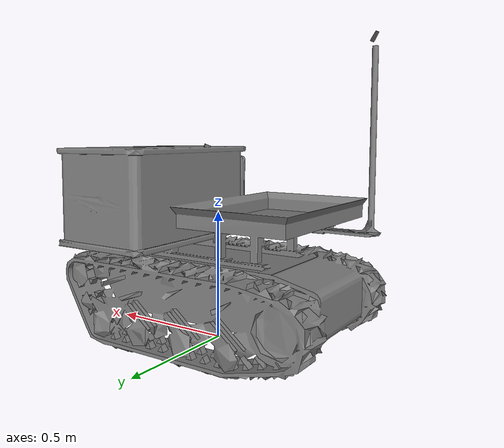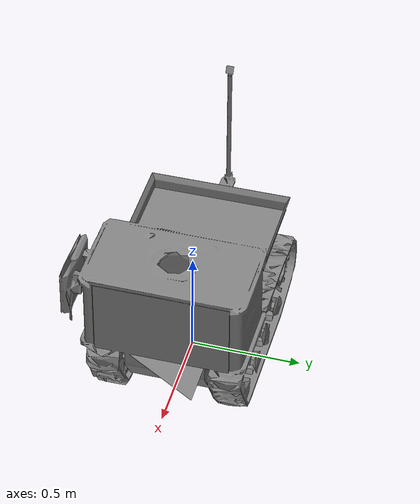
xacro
<?xml version="1.0" encoding="UTF-8"?>
<robot xmlns:xacro="http://wiki.ros.org/xacro" name="car">

  <!-- Use this if parameters are set from the launch file, otherwise delete -->
  <xacro:arg name="prefix" default="" />

  <xacro:arg name="use_mock_hardware" default="false" />
  <xacro:arg name="mock_sensor_commands" default="false" />
  <xacro:arg name="sim_gazebo_classic" default="false" />
  <xacro:arg name="sim_gazebo" default="false" />
  <xacro:arg name="simulation_controllers" default="" />
  <xacro:arg name="serial" default="/dev/ttyUSB0" />

  <xacro:include filename="$(find nav2_gps_waypoint_follower_demo)/urdf/car_macro.xacro"/>
  <xacro:include filename="$(find nav2_gps_waypoint_follower_demo)/urdf/car_macro.ros2_control.xacro"/>
  <xacro:include filename="$(find nav2_gps_waypoint_follower_demo)/urdf/car.gazebo.xacro" />
  <xacro:include filename="$(find nav2_gps_waypoint_follower_demo)/urdf/imu.xacro" />
  <xacro:include filename="$(find nav2_gps_waypoint_follower_demo)/urdf/imu.gazebo.xacro" />
  <xacro:include filename="$(find nav2_gps_waypoint_follower_demo)/urdf/camera.xacro" />
  <xacro:include filename="$(find nav2_gps_waypoint_follower_demo)/urdf/camera.gazebo.xacro" />
  <xacro:include filename="$(find nav2_gps_waypoint_follower_demo)/urdf/gps.xacro" />
  <xacro:include filename="$(find nav2_gps_waypoint_follower_demo)/urdf/gps.gazebo.xacro" />

  <!-- Load robot's macro with parameters -->
  <!-- set prefix if multiple robots are used -->
  <xacro:car prefix="$(arg prefix)" />
  <xacro:car_ros2_control
    name="car"
    prefix="$(arg prefix)"
    use_mock_hardware="$(arg use_mock_hardware)"
    mock_sensor_commands="$(arg mock_sensor_commands)"
    sim_gazebo_classic="$(arg sim_gazebo_classic)"
    sim_gazebo="$(arg sim_gazebo)"
    serial="$(arg serial)"/>
  <xacro:car_gazebo prefix="$(arg prefix)" />

  <link name="base_footprint" />
  <joint name="joint_footprint" type="fixed">
    <parent link="$(arg prefix)base_footprint"/>
    <child link="$(arg prefix)base_link"/>
    <origin xyz="0 0 0.0" rpy="0 0 0"/>
  </joint>

  <xacro:imu prefix="$(arg prefix)" parent="$(arg prefix)base_link">
    <origin xyz="0 0 0.2" rpy="0 0 0"/>
  </xacro:imu>
  <xacro:imu_gazebo prefix="$(arg prefix)" />

  <xacro:camera prefix="$(arg prefix)front_" parent="$(arg prefix)base_link">
    <origin xyz="0.65 0 0.70" rpy="0 0 0"/>
  </xacro:camera>
  <xacro:camera_gazebo prefix="$(arg prefix)front_" />

  <xacro:gps prefix="$(arg prefix)" parent="$(arg prefix)base_link">
    <origin xyz="0.45 -0.30 0.80" rpy="0 0 0"/>
  </xacro:gps>
  <xacro:gps_gazebo prefix="$(arg prefix)" />

</robot>

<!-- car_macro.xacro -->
<robot xmlns:xacro="http://wiki.ros.org/xacro">

  <xacro:macro name="car" params="prefix">

  <material name="black">
    <color rgba="0 0 0 1"/>
  </material>

  <material name="white">
    <color rgba="1 1 1 1"/>
  </material>

  <material name="red">
    <color rgba="1 0 0 1"/>
  </material>

  <material name="grey">
    <color rgba="0.5 0.5 0.5 1"/>
  </material>

  <!-- Constants for robot dimensions -->
  <xacro:property name="PI" value="3.1415926535897931"/>
  <xacro:property name="base_mass" value="1.0" /> <!-- arbitrary value for base mass -->
  <xacro:property name="base_width" value="0.5" />
  <xacro:property name="base_length" value="0.5" />
  <xacro:property name="base_height" value="0.75" />
  <xacro:property name="wheel_mass" value="10" /> <!-- arbitrary value for wheel mass -->
  <xacro:property name="wheel_len" value="0.05" />
  <xacro:property name="wheel_radius" value="0.08" />
  <xacro:property name="caster_wheel_mass" value="1.0" /> <!-- arbitrary value for caster wheel mass -->
  <xacro:property name="caster_wheel_radius" value="0.08" />
  <xacro:property name="z_offset" value="0.05" /> <!-- Space btw top of beam and the each joint -->
  <xacro:property name="y_offset" value="0.05" />

  <!-- Base Link -->
  <link name="${prefix}base_link">
    <collision>
      <origin xyz="0 0 ${z_offset + 0.26 + 0.074 + 0.42 / 2}" rpy="0 0 0"/>
      <geometry>
        <box size="${base_length} ${base_width} 0.42"/>
      </geometry>
    </collision>
    <collision>
      <origin xyz="0 0 ${z_offset + 0.26 + 0.074 / 2}" rpy="0 0 0"/>
      <geometry>
        <box size="${base_length - 0.18} ${base_width - 0.022} 0.074"/>
      </geometry>
    </collision>
    <collision>
      <origin xyz="0 0 ${z_offset + 0.26 / 2}" rpy="0 0 0"/>
      <geometry>
        <box size="${base_length} ${base_width} 0.26"/>
      </geometry>
    </collision>

    <visual>
      <origin xyz="0.3 0 0.75" rpy="0 0 -1.57"/>
      <geometry>
        <mesh filename="package://nav2_gps_waypoint_follower_demo/description/meshes/car.stl"/>
      </geometry>
      <material name="grey"/>
    </visual>

    <inertial>
      <origin xyz="0 0 0" rpy="0 0 0"/>
      <mass value="${base_mass}"/>
      <inertia
        ixx="${base_mass / 12.0 * (base_length*base_length + base_height*base_height)}" ixy="0.0" ixz="0.0"
        iyy="${base_mass / 12.0 * (base_height*base_height + base_width*base_width)}" iyz="0.0"
        izz="${base_mass / 12.0 * (base_width*base_width + base_length*base_length)}"/>
    </inertial>
  </link>

  <joint name="${prefix}left_wheel_joint" type="continuous">
    <parent link="${prefix}base_link"/>
    <child link="${prefix}left_wheel"/>
    <origin xyz="0 ${base_width/2-y_offset} ${wheel_radius}" rpy="0 0 0"/>
    <axis xyz="0 1 0"/>
  </joint>

    <!-- left wheel Link -->
    <link name="${prefix}left_wheel">
      <collision>
        <origin xyz="0 0 0" rpy="${PI/2} 0 0"/>
        <geometry>
          <cylinder length="${wheel_len}" radius="${wheel_radius}"/>
        </geometry>
      </collision>

      <inertial>
        <origin xyz="0 0 0" rpy="${PI/2} 0 0"/>
        <mass value="${wheel_mass}"/>
        <inertia
          ixx="${wheel_mass / 12.0 * (3*wheel_radius*wheel_radius + wheel_len*wheel_len)}" ixy="0.0" ixz="0.0"
          iyy="${wheel_mass / 12.0 * (3*wheel_radius*wheel_radius + wheel_len*wheel_len)}" iyz="0.0"
          izz="${wheel_mass / 2.0 * wheel_radius*wheel_radius}"/>
        </inertial>
    </link>

    <joint name="${prefix}right_wheel_joint" type="continuous">
      <parent link="${prefix}base_link"/>
      <child link="${prefix}right_wheel"/>
      <origin xyz="0 ${-base_width/2 + y_offset} ${wheel_radius}" rpy="0 0 0"/>
      <axis xyz="0 1 0"/>
    </joint>

    <!-- right wheel Link -->
    <link name="${prefix}right_wheel">
      <collision>
        <origin xyz="0 0 0" rpy="${PI/2} 0 0"/>
        <geometry>
          <cylinder length="${wheel_len}" radius="${wheel_radius}"/>
        </geometry>
      </collision>

      <inertial>
        <origin xyz="0 0 0" rpy="${PI/2} 0 0"/>
        <mass value="${wheel_mass}"/>
        <inertia
          ixx="${wheel_mass / 12.0 * (3*wheel_radius*wheel_radius + wheel_len*wheel_len)}" ixy="0.0" ixz="0.0"
          iyy="${wheel_mass / 12.0 * (3*wheel_radius*wheel_radius + wheel_len*wheel_len)}" iyz="0.0"
          izz="${wheel_mass / 2.0 * wheel_radius*wheel_radius}"/>
        </inertial>
      </link>

    <joint name="${prefix}caster_frontal_wheel_joint" type="fixed">
      <parent link="${prefix}base_link"/>
      <child link="${prefix}caster_frontal_wheel"/>
      <origin xyz="${base_width/2 - caster_wheel_radius} 0 ${wheel_radius}" rpy="0 0 0"/>
    </joint>

    <!-- caster frontal wheel Link -->
    <link name="${prefix}caster_frontal_wheel">
      <collision>
        <origin xyz="0 0 0" rpy="0 0 0"/>
        <geometry>
          <sphere radius="${caster_wheel_radius}"/>
        </geometry>
      </collision>

      <inertial>
        <origin xyz="0 0 0" rpy="0 0 0"/>
        <mass value="${caster_wheel_mass}"/>
        <inertia
          ixx="${caster_wheel_mass * 0.4 * (caster_wheel_radius * caster_wheel_radius)}" ixy="0.0" ixz="0.0"
          iyy="${caster_wheel_mass * 0.4 * (caster_wheel_radius * caster_wheel_radius)}" iyz="0.0"
          izz="${caster_wheel_mass * 0.4 * (caster_wheel_radius * caster_wheel_radius)}"/>
        </inertial>
      </link>

    <joint name="${prefix}caster_rear_wheel_joint" type="fixed">
      <parent link="${prefix}base_link"/>
      <child link="${prefix}caster_rear_wheel"/>
      <origin xyz="${-base_length/2 + caster_wheel_radius} 0 ${wheel_radius}" rpy="0 0 0"/>
    </joint>

    <!-- caster rear wheel Link -->
    <link name="${prefix}caster_rear_wheel">
      <collision>
        <origin xyz="0 0 0" rpy="0 0 0"/>
        <geometry>
          <sphere radius="${caster_wheel_radius}"/>
        </geometry>
      </collision>

      <inertial>
        <origin xyz="0 0 0" rpy="0 0 0"/>
        <mass value="${caster_wheel_mass}"/>
        <inertia
          ixx="${caster_wheel_mass * 0.4 * (caster_wheel_radius * caster_wheel_radius)}" ixy="0.0" ixz="0.0"
          iyy="${caster_wheel_mass * 0.4 * (caster_wheel_radius * caster_wheel_radius)}" iyz="0.0"
          izz="${caster_wheel_mass * 0.4 * (caster_wheel_radius * caster_wheel_radius)}"/>
      </inertial>
    </link>

  </xacro:macro>
</robot>

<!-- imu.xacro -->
<robot xmlns:xacro="http://www.ros.org/wiki/xacro" >
    <xacro:macro name="imu" params="prefix parent *origin">
        <joint name="${prefix}imu_joint" type="fixed">
            <parent link="${parent}"/>
            <child link="${prefix}imu_link"/>
            <xacro:insert_block name="origin" />
        </joint>
        <link name="${prefix}imu_link">
        </link>
    </xacro:macro>
</robot>

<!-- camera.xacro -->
<robot xmlns:xacro="http://www.ros.org/wiki/xacro" >
    <xacro:macro name="camera" params="prefix parent *origin">
        <!-- 相机安装关节 -->
        <joint name="${prefix}camera_mount_joint" type="fixed">
            <parent link="${parent}"/>
            <child link="${prefix}camera_link"/>
            <xacro:insert_block name="origin" />
        </joint>

        <!-- 相机主体链接 -->
        <link name="${prefix}camera_link">
            <collision>
                <origin xyz="0.003 0.065 0.007" rpy="0 0 0"/>
                <geometry>
                    <box size="0.012 0.132 0.020"/>
                </geometry>
            </collision>
        </link>

        <!-- 相机深度帧关节 -->
        <joint name="${prefix}camera_depth_joint" type="fixed">
            <origin xyz="0.005 0.028 0.013" rpy="-1.57 0 -1.57"/>
            <parent link="${prefix}camera_link"/>
            <child link="${prefix}camera_depth_frame"/>
        </joint>

        <!-- 相机深度帧链接 -->
        <link name="${prefix}camera_depth_frame"/>

        <!-- 相机深度光学帧关节 -->
        <joint name="${prefix}camera_depth_optical_joint" type="fixed">
            <origin xyz="0 0 0" rpy="0 0 0"/>
            <parent link="${prefix}camera_depth_frame"/>
            <child link="${prefix}camera_depth_optical_frame"/>
        </joint>

        <!-- 相机深度光学帧链接 -->
        <link name="${prefix}camera_depth_optical_frame"/>
    </xacro:macro>
</robot>

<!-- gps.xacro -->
<robot xmlns:xacro="http://www.ros.org/wiki/xacro" >
    <xacro:macro name="gps" params="prefix parent *origin">
        <joint name="${prefix}gps_joint" type="fixed">
            <parent link="${parent}"/>
            <child link="${prefix}gps_link"/>
            <xacro:insert_block name="origin" />
        </joint>
        <link name="${prefix}gps_link">
        </link>
    </xacro:macro>
</robot>
